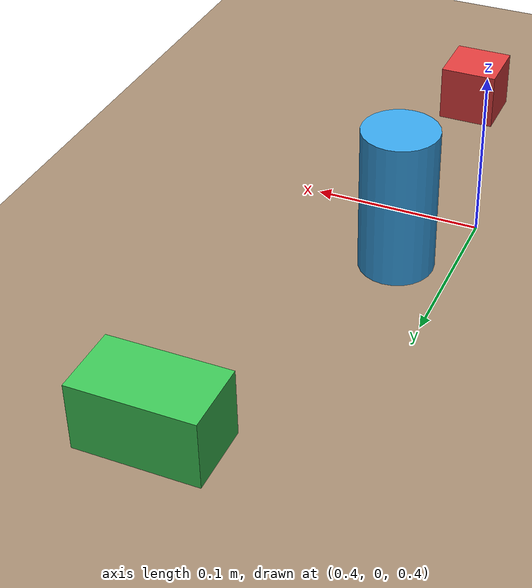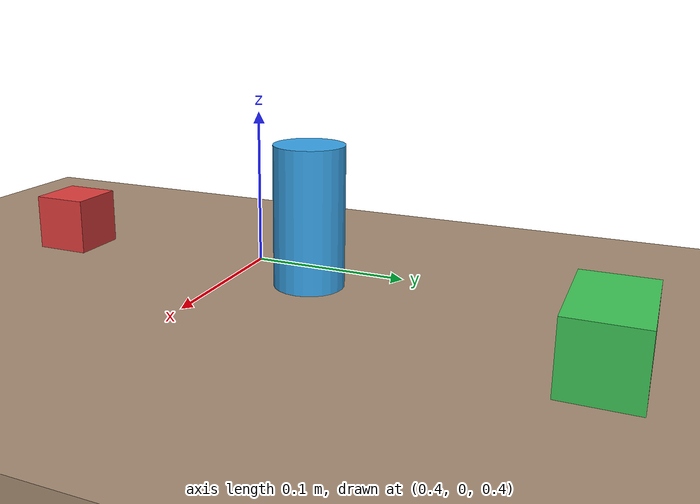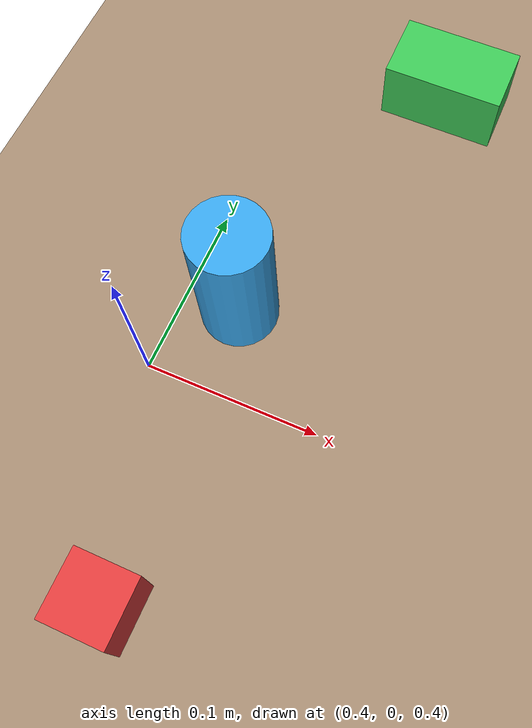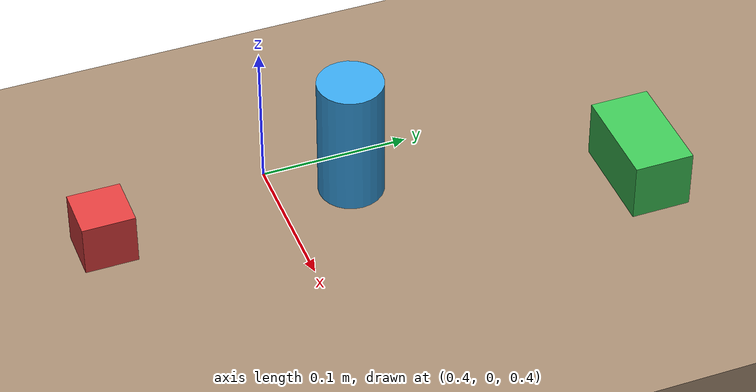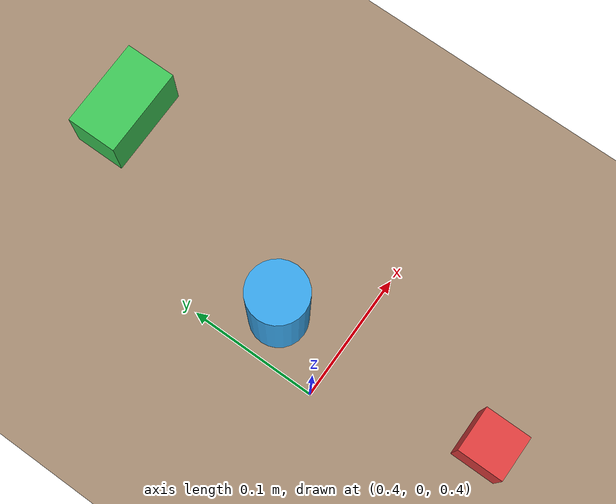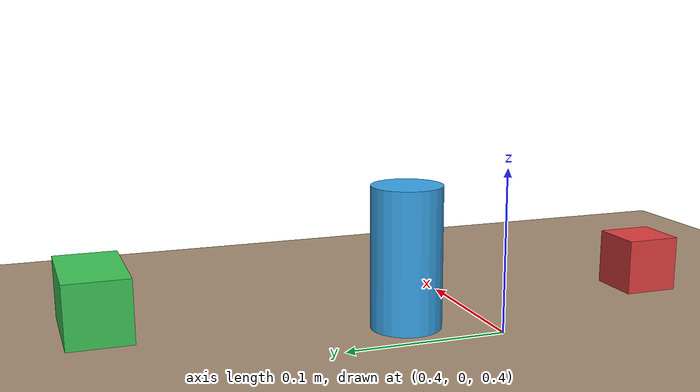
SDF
<?xml version="1.0" ?>
<sdf version="1.6">
  <world name="phase6_tabletop_world">
    <physics name="1ms" type="ignored">
      <max_step_size>0.001</max_step_size>
      <real_time_factor>1.0</real_time_factor>
    </physics>
    <plugin name="gz::sim::systems::Physics" filename="gz-sim-physics-system"/>
    <gravity>0 0 -9.81</gravity>
    <magnetic_field>6e-06 2.3e-05 -4.2e-05</magnetic_field>
    <atmosphere type="adiabatic"/>
    <plugin name="gz::sim::systems::UserCommands" filename="gz-sim-user-commands-system"/>
    <plugin name="gz::sim::systems::SceneBroadcaster" filename="gz-sim-scene-broadcaster-system"/>
    <plugin name="gz::sim::systems::Sensors" filename="gz-sim-sensors-system">
      <render_engine>ogre2</render_engine>
    </plugin>
    <plugin name="gz::sim::systems::Imu" filename="gz-sim-imu-system"/>

    <gui fullscreen="0">
      <plugin filename="MinimalScene" name="3D View">
        <gz-gui>
          <title>3D View</title>
          <property type="bool" key="showTitleBar">false</property>
          <property type="string" key="state">docked</property>
        </gz-gui>
        <engine>ogre2</engine>
        <scene>scene</scene>
        <ambient_light>0.4 0.4 0.4</ambient_light>
        <background_color>0.8 0.8 0.8</background_color>
        <camera_pose>-2.8 0.2 1.6 0 0.4 0</camera_pose>
      </plugin>

      <plugin filename="EntityContextMenuPlugin" name="Entity context menu">
        <gz-gui>
          <property key="state" type="string">floating</property>
          <property key="width" type="double">5</property>
          <property key="height" type="double">5</property>
          <property key="showTitleBar" type="bool">false</property>
        </gz-gui>
      </plugin>
      <plugin filename="GzSceneManager" name="Scene Manager">
        <gz-gui>
          <property key="resizable" type="bool">false</property>
          <property key="width" type="double">5</property>
          <property key="height" type="double">5</property>
          <property key="state" type="string">floating</property>
          <property key="showTitleBar" type="bool">false</property>
        </gz-gui>
      </plugin>
      <plugin filename="InteractiveViewControl" name="Interactive view control">
        <gz-gui>
          <property key="resizable" type="bool">false</property>
          <property key="width" type="double">5</property>
          <property key="height" type="double">5</property>
          <property key="state" type="string">floating</property>
          <property key="showTitleBar" type="bool">false</property>
        </gz-gui>
      </plugin>
      <plugin filename="CameraTracking" name="Camera Tracking">
        <gz-gui>
          <property key="resizable" type="bool">false</property>
          <property key="width" type="double">5</property>
          <property key="height" type="double">5</property>
          <property key="state" type="string">floating</property>
          <property key="showTitleBar" type="bool">false</property>
        </gz-gui>
      </plugin>
      <plugin filename="WorldControl" name="World control">
        <gz-gui>
          <title>World control</title>
          <property type="bool" key="showTitleBar">false</property>
          <property type="bool" key="resizable">false</property>
          <property type="double" key="height">72</property>
          <property type="double" key="z">1</property>
          <property type="string" key="state">floating</property>
          <anchors target="3D View">
            <line own="left" target="left"/>
            <line own="bottom" target="bottom"/>
          </anchors>
        </gz-gui>
        <play_pause>true</play_pause>
        <step>true</step>
        <start_paused>false</start_paused>
        <use_event>true</use_event>
      </plugin>
      <plugin filename="WorldStats" name="World stats">
        <gz-gui>
          <title>World stats</title>
          <property type="bool" key="showTitleBar">false</property>
          <property type="bool" key="resizable">false</property>
          <property type="double" key="height">110</property>
          <property type="double" key="width">290</property>
          <property type="double" key="z">1</property>
          <property type="string" key="state">floating</property>
          <anchors target="3D View">
            <line own="right" target="right"/>
            <line own="bottom" target="bottom"/>
          </anchors>
        </gz-gui>
        <sim_time>true</sim_time>
        <real_time>true</real_time>
        <real_time_factor>true</real_time_factor>
        <iterations>true</iterations>
      </plugin>
      <plugin filename="ImageDisplay" name="Wrist RGB Camera">
        <gz-gui>
          <title>Wrist RGB</title>
          <property key="state" type="string">floating</property>
          <property type="double" key="width">380</property>
          <property type="double" key="height">310</property>
          <property type="double" key="x">960</property>
          <property type="double" key="y">40</property>
        </gz-gui>
        <topic>camera</topic>
        <topic_picker>false</topic_picker>
      </plugin>
      <plugin filename="ComponentInspector" name="Component inspector">
        <gz-gui>
          <property type="string" key="state">docked</property>
        </gz-gui>
      </plugin>
      <plugin filename="EntityTree" name="Entity tree">
        <gz-gui>
          <property type="string" key="state">docked</property>
        </gz-gui>
      </plugin>
    </gui>

    <light name="sun" type="directional">
      <cast_shadows>true</cast_shadows>
      <pose>0 0 10 0 0 0</pose>
      <diffuse>0.85 0.85 0.85 1.0</diffuse>
      <specular>0.2 0.2 0.2 1.0</specular>
      <attenuation>
        <range>1000</range>
        <constant>0.9</constant>
        <linear>0.01</linear>
        <quadratic>0.001</quadratic>
      </attenuation>
      <direction>-0.5 0.1 -0.9</direction>
    </light>

    <model name="ground_plane">
      <static>true</static>
      <link name="ground_link">
        <collision name="ground_collision">
          <geometry>
            <plane>
              <normal>0 0 1</normal>
              <size>50 50</size>
            </plane>
          </geometry>
          <surface>
            <friction>
              <ode>
                <mu>1.0</mu>
                <mu2>1.0</mu2>
              </ode>
            </friction>
          </surface>
        </collision>
        <visual name="ground_visual">
          <geometry>
            <plane>
              <normal>0 0 1</normal>
              <size>50 50</size>
            </plane>
          </geometry>
          <material>
            <ambient>0.35 0.35 0.35 1.0</ambient>
            <diffuse>0.42 0.42 0.42 1.0</diffuse>
          </material>
        </visual>
      </link>
    </model>

    <model name="table">
      <static>true</static>
      <pose>0.5 0.0 0.38 0 0 0</pose>
      <link name="table_link">
        <collision name="table_collision">
          <geometry>
            <box>
              <size>1.0 0.8 0.04</size>
            </box>
          </geometry>
        </collision>
        <visual name="table_visual">
          <geometry>
            <box>
              <size>1.0 0.8 0.04</size>
            </box>
          </geometry>
          <material>
            <ambient>0.55 0.45 0.35 1.0</ambient>
            <diffuse>0.65 0.55 0.45 1.0</diffuse>
          </material>
        </visual>
      </link>
    </model>

    <model name="target_cylinder">
      <static>false</static>
      <pose>0.432 0.05 0.444 0 0 0</pose>
      <link name="target_link">
        <inertial>
          <mass>0.16</mass>
          <inertia>
            <ixx>0.0003</ixx>
            <iyy>0.0003</iyy>
            <izz>0.0001</izz>
            <ixy>0</ixy>
            <ixz>0</ixz>
            <iyz>0</iyz>
          </inertia>
        </inertial>
        <collision name="target_collision">
          <geometry>
            <cylinder>
              <radius>0.022</radius>
              <length>0.088</length>
            </cylinder>
          </geometry>
        </collision>
        <visual name="target_visual">
          <geometry>
            <cylinder>
              <radius>0.022</radius>
              <length>0.088</length>
            </cylinder>
          </geometry>
          <material>
            <ambient>0.18 0.55 0.80 1.0</ambient>
            <diffuse>0.22 0.65 0.92 1.0</diffuse>
          </material>
        </visual>
      </link>
    </model>

    <model name="helper_red_block">
      <static>true</static>
      <pose>0.44 -0.12 0.425 0 0 0</pose>
      <link name="helper_red_block_link">
        <collision name="helper_red_block_collision">
          <geometry>
            <box>
              <size>0.035 0.035 0.035</size>
            </box>
          </geometry>
        </collision>
        <visual name="helper_red_block_visual">
          <geometry>
            <box>
              <size>0.035 0.035 0.035</size>
            </box>
          </geometry>
          <material>
            <ambient>0.75 0.18 0.18 1.0</ambient>
            <diffuse>0.88 0.24 0.24 1.0</diffuse>
          </material>
        </visual>
      </link>
    </model>

    <model name="helper_green_block">
      <static>true</static>
      <pose>0.49 0.23 0.420 0 0 0</pose>
      <link name="helper_green_block_link">
        <collision name="helper_green_block_collision">
          <geometry>
            <box>
              <size>0.070 0.040 0.040</size>
            </box>
          </geometry>
        </collision>
        <visual name="helper_green_block_visual">
          <geometry>
            <box>
              <size>0.070 0.040 0.040</size>
            </box>
          </geometry>
          <material>
            <ambient>0.18 0.62 0.28 1.0</ambient>
            <diffuse>0.24 0.78 0.34 1.0</diffuse>
          </material>
        </visual>
      </link>
    </model>
  </world>
</sdf>
